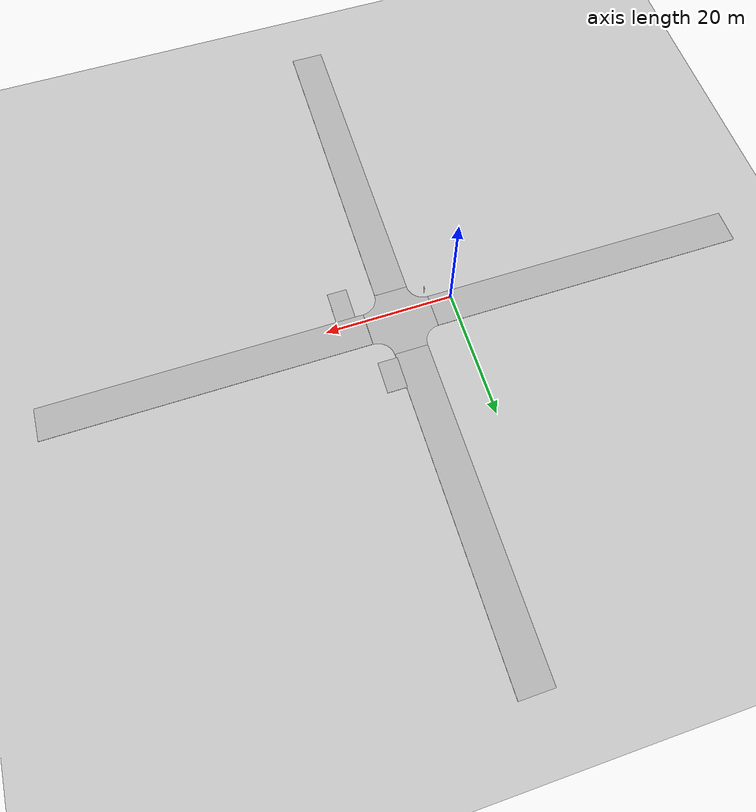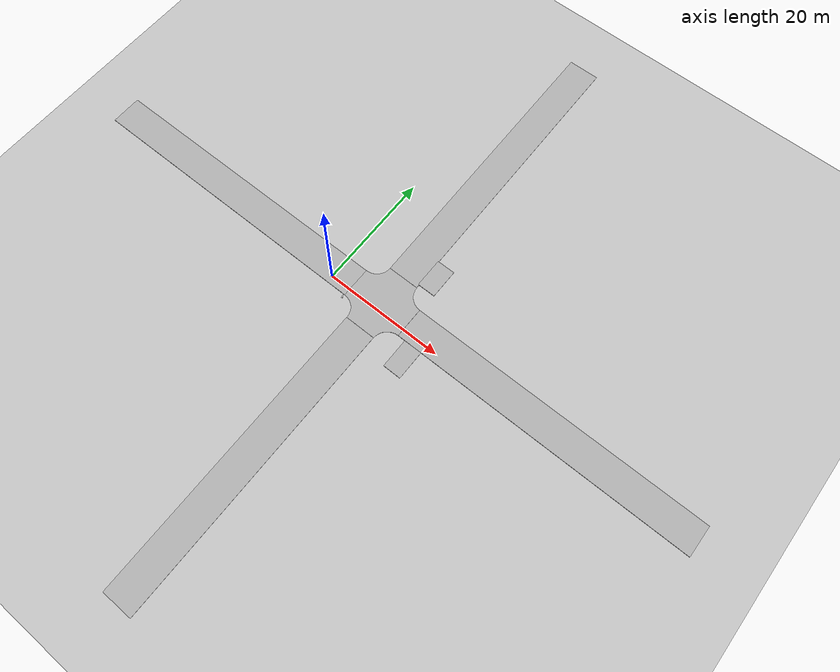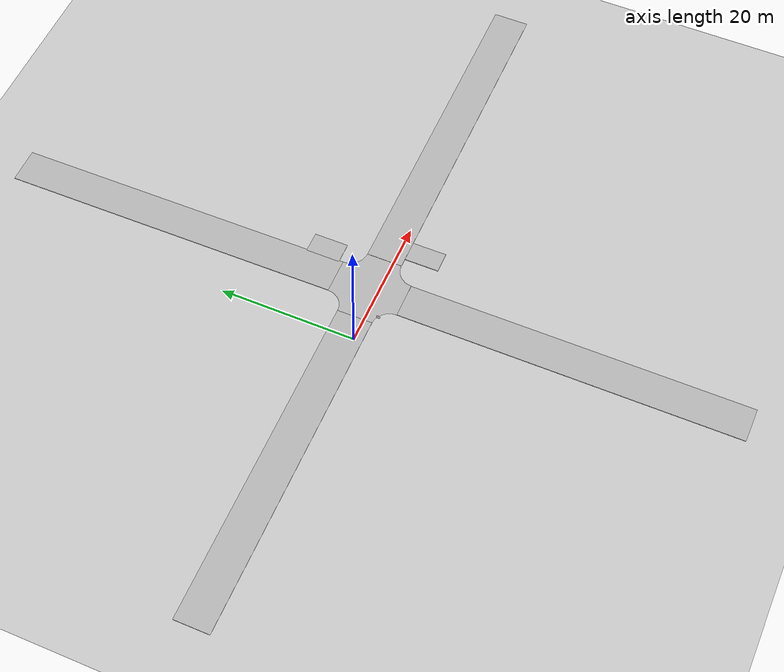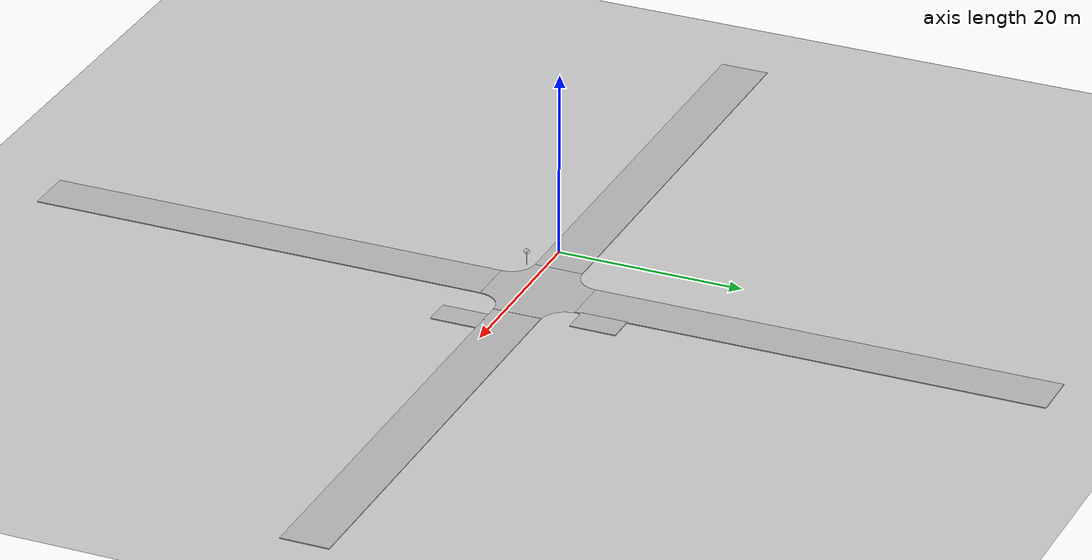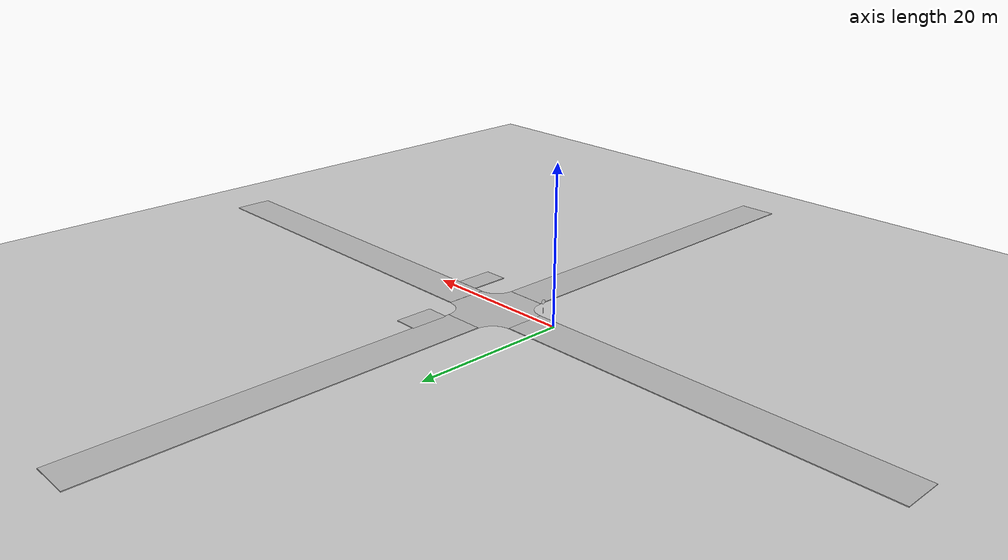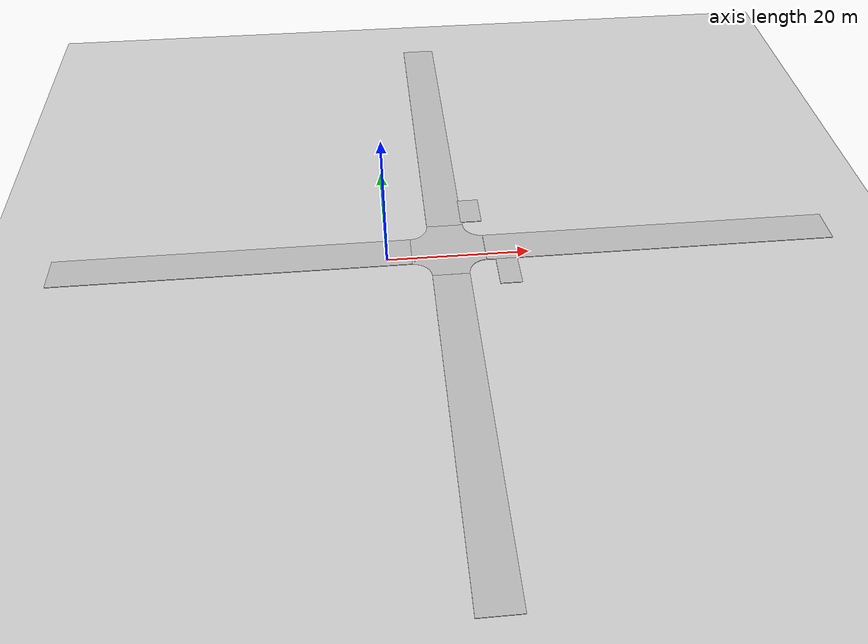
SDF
<sdf version="1.6">
 <world name="default">
  <light name="sun" type="directional">
   <pose>0 0 10 0 -0 0</pose>
   <diffuse>0.8 0.8 0.8 1</diffuse>
   <specular>0.2 0.2 0.2 1</specular>
   <attenuation>
    <range>1000</range>
    <constant>0.9</constant>
    <linear>0.01</linear>
    <quadratic>0.001</quadratic>
   </attenuation>
   <direction>-0.5 0.1 -0.9</direction>
  </light>
  <model name="ground_plane">
   <static>1</static>
   <link name="link">
    <collision name="collision">
     <geometry><plane><normal>0 0 1</normal><size>100 100</size></plane></geometry>
     <surface>
      <contact><collide_bitmask>65535</collide_bitmask></contact>
      <friction><ode><mu>100</mu><mu2>50</mu2></ode></friction>
     </surface>
    </collision>
    <visual name="visual">
     <cast_shadows>0</cast_shadows>
     <geometry><plane><normal>0 0 1</normal><size>100 100</size></plane></geometry>
     <material>
      <script><uri>file://media/materials/scripts/gazebo.material</uri><name>Gazebo/Grey</name></script>
     </material>
    </visual>
   </link>
  </model>
  <gravity>0 0 -9.8</gravity>
  <magnetic_field>6e-06 2.3e-05 -4.2e-05</magnetic_field>
  <atmosphere type="adiabatic"/>
  <physics name="default_physics" default="0" type="ode">
   <max_step_size>0.001</max_step_size>
   <real_time_factor>1</real_time_factor>
   <real_time_update_rate>1000</real_time_update_rate>
  </physics>
  <scene><ambient>0.4 0.4 0.4 1</ambient><background>0.7 0.7 0.7 1</background><shadows>1</shadows></scene>
  <spherical_coordinates>
   <surface_model>EARTH_WGS84</surface_model>
   <latitude_deg>0</latitude_deg>
   <longitude_deg>0</longitude_deg>
   <elevation>0</elevation>
   <heading_deg>0</heading_deg>
  </spherical_coordinates>
  <model name="straight_road_50">
   <pose>-21.5541 1.41569 0 0 -0 0</pose>
   <static>1</static>
   <link name="link">
    <inertial>
     <mass>1</mass>
     <inertia><ixx>1</ixx><iyy>1</iyy><izz>1</izz><ixy>0</ixy><ixz>0</ixz><iyz>0</iyz></inertia>
    </inertial>
    <visual name="visual">
     <geometry><mesh><uri>model://straight_road_50_3/meshes/straight_road_50.dae</uri></mesh></geometry>
    </visual>
    <collision name="collision">
     <geometry><mesh><uri>model://straight_road_50_3/meshes/straight_road_50.dae</uri></mesh></geometry>
    </collision>
   </link>
  </model>
  <model name="road_intersection_3">
   <pose>8.64123 1.41192 0 0 -0 0</pose>
   <static>1</static>
   <link name="link">
    <visual name="visual">
     <geometry><mesh><uri>model://road_intersection_3/meshes/road_intersection.dae</uri></mesh></geometry>
    </visual>
    <collision name="collision">
     <geometry><mesh><uri>model://road_intersection_3/meshes/road_intersection.dae</uri></mesh></geometry>
    </collision>
   </link>
  </model>
  <model name="straight_road_50_0">
   <pose>38.8641 1.40553 0 0 -0 0</pose>
   <static>1</static>
   <link name="link">
    <inertial>
     <mass>1</mass>
     <inertia><ixx>1</ixx><iyy>1</iyy><izz>1</izz><ixy>0</ixy><ixz>0</ixz><iyz>0</iyz></inertia>
    </inertial>
    <visual name="visual">
     <geometry><mesh><uri>model://straight_road_50_3/meshes/straight_road_50.dae</uri></mesh></geometry>
    </visual>
    <collision name="collision">
     <geometry><mesh><uri>model://straight_road_50_3/meshes/straight_road_50.dae</uri></mesh></geometry>
    </collision>
   </link>
  </model>
  <model name="straight_road_50_1">
   <pose>8.61702 -28.7936 0 0 -0 1.57064</pose>
   <static>1</static>
   <link name="link">
    <inertial>
     <mass>1</mass>
     <inertia><ixx>1</ixx><iyy>1</iyy><izz>1</izz><ixy>0</ixy><ixz>0</ixz><iyz>0</iyz></inertia>
    </inertial>
    <visual name="visual">
     <geometry><mesh><uri>model://straight_road_50_3/meshes/straight_road_50.dae</uri></mesh></geometry>
    </visual>
    <collision name="collision">
     <geometry><mesh><uri>model://straight_road_50_3/meshes/straight_road_50.dae</uri></mesh></geometry>
    </collision>
   </link>
  </model>
  <model name="straight_road_50_2">
   <pose>8.50578 31.6034 0 0 0 -1.56601</pose>
   <static>1</static>
   <link name="link">
    <inertial>
     <mass>1</mass>
     <inertia><ixx>1</ixx><iyy>1</iyy><izz>1</izz><ixy>0</ixy><ixz>0</ixz><iyz>0</iyz></inertia>
    </inertial>
    <visual name="visual">
     <geometry><mesh><uri>model://straight_road_50_3/meshes/straight_road_50.dae</uri></mesh></geometry>
    </visual>
    <collision name="collision">
     <geometry><mesh><uri>model://straight_road_50_3/meshes/straight_road_50.dae</uri></mesh></geometry>
    </collision>
   </link>
  </model>
  <model name="parking_space">
   <pose>16.64 -3.7 0 0 0 0</pose>
   <static>1</static>
   <link name="link">
    <inertial>
     <mass>1</mass>
     <inertia><ixx>1</ixx><iyy>1</iyy><izz>1</izz><ixy>0</ixy><ixz>0</ixz><iyz>0</iyz></inertia>
    </inertial>
    <visual name="visual">
     <geometry><mesh><uri>model://parking_space/meshes/parking_space.dae</uri></mesh></geometry>
    </visual>
    <collision name="collision">
     <geometry><mesh><uri>model://parking_space/meshes/parking_space.dae</uri></mesh></geometry>
    </collision>
   </link>
  </model>
  <model name="parallel_parking">
   <pose>12.58 9.7 0 0 0 0</pose>
   <static>1</static>
   <link name="link">
    <inertial>
     <mass>1</mass>
     <inertia><ixx>1</ixx><iyy>1</iyy><izz>1</izz><ixy>0</ixy><ixz>0</ixz><iyz>0</iyz></inertia>
    </inertial>
    <visual name="visual">
     <geometry><mesh><uri>model://parallel_parking/meshes/parallel_parking.dae</uri></mesh></geometry>
    </visual>
    <collision name="collision">
     <geometry><mesh><uri>model://parallel_parking/meshes/parallel_parking.dae</uri></mesh></geometry>
    </collision>
   </link>
  </model>
  <model name="Unknown Stop Sign 1">
   <static>1</static>
   <link name="link">
    <collision name="collision">
     <geometry><mesh><uri>model://unknown_stop_sign_1/meshes/stop_sign.dae</uri></mesh></geometry>
    </collision>
    <visual name="visual">
     <geometry><mesh><uri>model://unknown_stop_sign_1/meshes/stop_sign.dae</uri></mesh></geometry>
     <material>
      <script>
       <uri>model://unknown_stop_sign_1/materials/scripts</uri>
       <uri>model://unknown_stop_sign_1/materials/textures</uri>
       <name>StopSign1/Diffuse</name>
      </script>
     </material>
    </visual>
   </link>
   <pose>3.7713 -1.99623 0 0 0 -1.53864</pose>
  </model>
 </world>
</sdf>
